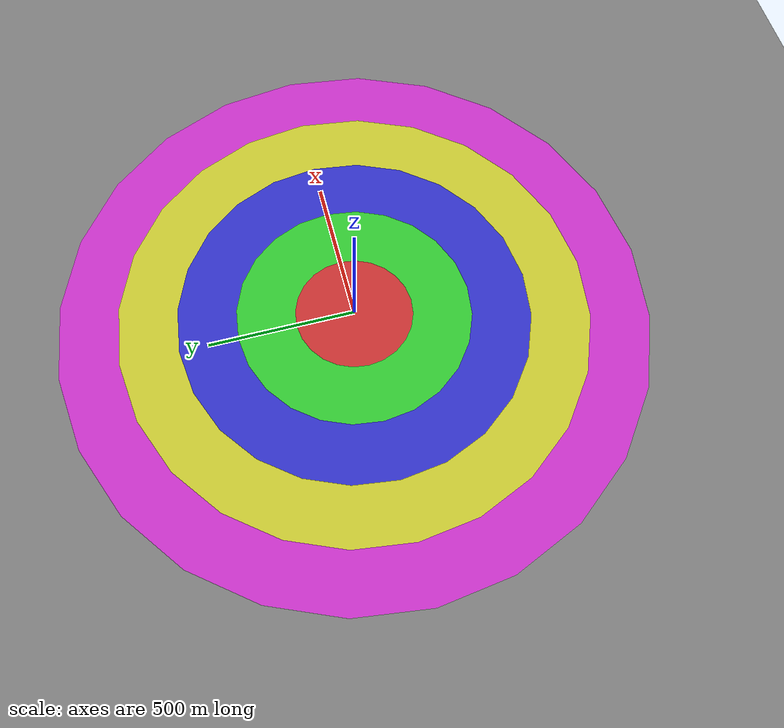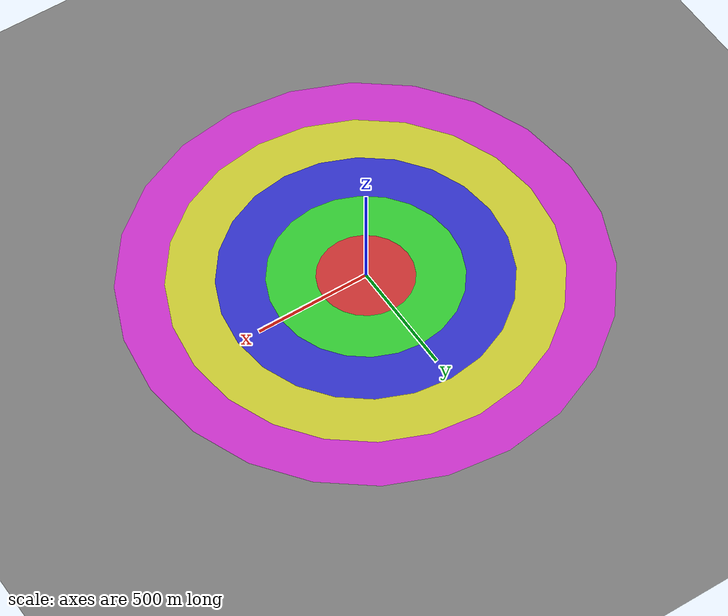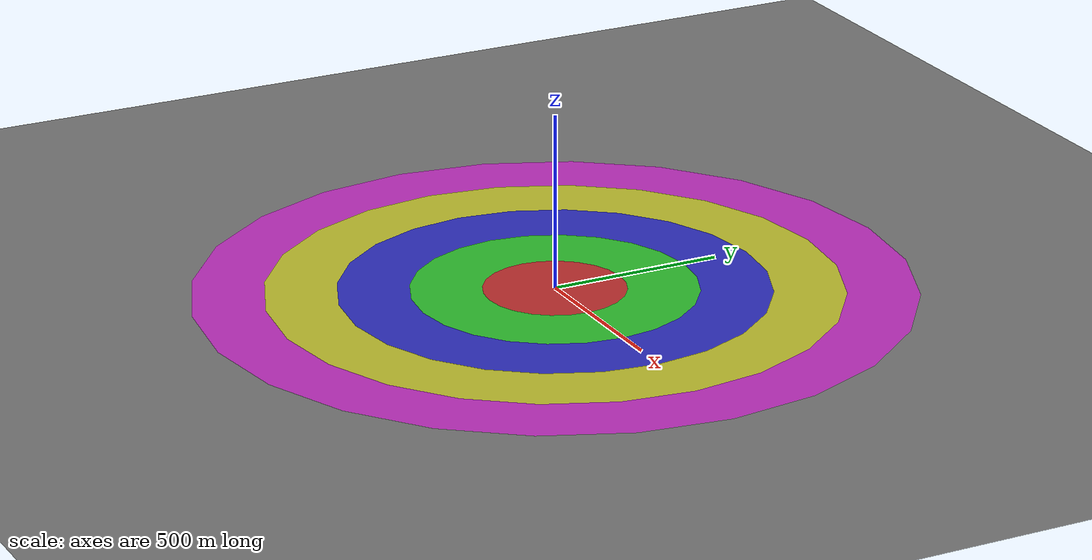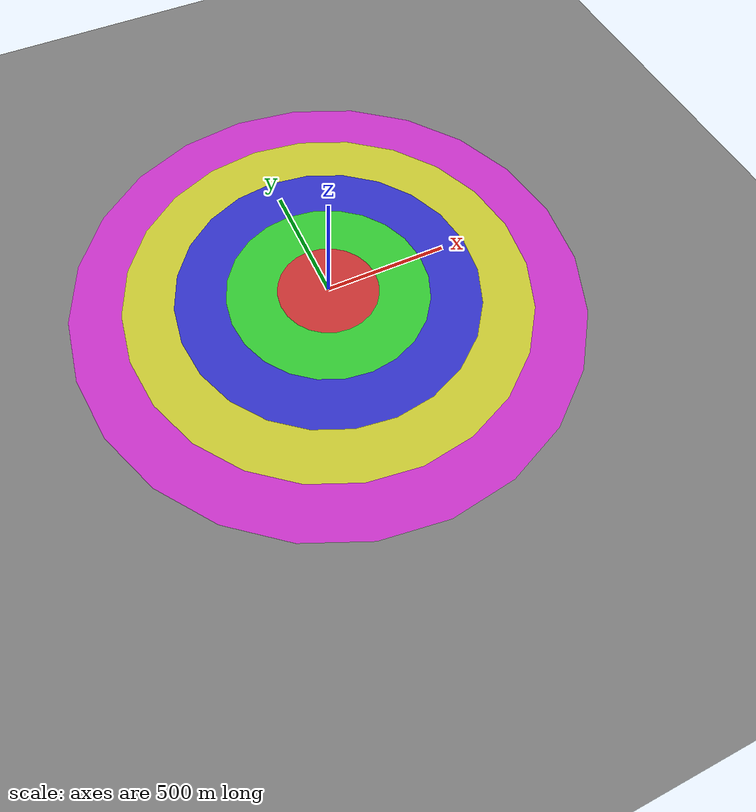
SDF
<?xml version="1.0" ?>
<sdf version="1.6">
  <world name="glider_test">
    <plugin filename="gz-sim-physics-system" name="gz::sim::systems::Physics">
    </plugin>
    <plugin filename="gz-sim-user-commands-system" name="gz::sim::systems::UserCommands">
    </plugin>
    <plugin filename="gz-sim-scene-broadcaster-system" name="gz::sim::systems::SceneBroadcaster">
    </plugin>

    <scene>
      <ambient>1.0 1.0 1.0</ambient>
      <background>0.8 0.8 0.8</background>
      <grid>true</grid>
      <origin_visual>true</origin_visual>
      <sky></sky>
    </scene>

    <physics name="1ms" type="ignored">
      <max_step_size>0.001</max_step_size>
      <real_time_factor>1.0</real_time_factor>
    </physics>

    <light type="directional" name="sun">
      <cast_shadows>true</cast_shadows>
      <pose>0 0 10 0 0 0</pose>
      <diffuse>0.8 0.8 0.8 1</diffuse>
      <specular>0.2 0.2 0.2 1</specular>
      <attenuation>
        <range>1000</range>
        <constant>0.9</constant>
        <linear>0.01</linear>
        <quadratic>0.001</quadratic>
      </attenuation>
      <direction>-0.5 0.1 -0.9</direction>
    </light>

    <model name="ground_plane">
      <static>true</static>
      <link name="link">
        <collision name="collision">
          <geometry>
            <plane>
              <normal>0 0 1</normal>
              <size>1000 1000</size>
            </plane>
          </geometry>
          <surface>
            <friction>
              <ode>
                <mu>100</mu>
                <mu2>50</mu2>
              </ode>
            </friction>
          </surface>
        </collision>
        <visual name="visual">
          <geometry>
            <plane>
              <normal>0 0 1</normal>
              <size>1000 1000</size>
            </plane>
          </geometry>
          <material>
            <ambient>0.5 0.5 0.5 1</ambient>
            <diffuse>0.5 0.5 0.5 1</diffuse>
            <specular>0.1 0.1 0.1 1</specular>
          </material>
        </visual>
      </link>
    </model>

    <model name="distance_rings">
      <static>true</static>
      <link name="ring_20">
        <visual name="visual">
          <pose>0 0 0.06 0 0 0</pose>
          <geometry>
            <cylinder>
              <radius>200</radius>
              <length>0.001</length>
            </cylinder>
          </geometry>
          <material>
            <ambient>0.8 0.2 0.2 1</ambient>
            <diffuse>0.8 0.2 0.2 1</diffuse>
            <emissive>0.09 0 0 1</emissive>
          </material>
        </visual>
      </link>
      <link name="ring_40">
        <visual name="visual">
          <pose>0 0 0.05 0 0 0</pose>
          <geometry>
            <cylinder>
              <radius>400</radius>
              <length>0.001</length>
            </cylinder>
          </geometry>
          <material>
            <ambient>0.2 0.8 0.2 1</ambient>
            <diffuse>0.2 0.8 0.2 1</diffuse>
            <emissive>0 0.3 0 1</emissive>
          </material>
        </visual>
      </link>
      <link name="ring_60">
        <visual name="visual">
          <pose>0 0 0.04 0 0 0</pose>
          <geometry>
            <cylinder>
              <radius>600</radius>
              <length>0.001</length>
            </cylinder>
          </geometry>
          <material>
            <ambient>0.2 0.2 0.8 1</ambient>
            <diffuse>0.2 0.2 0.8 1</diffuse>
            <emissive>0 0 0.3 1</emissive>
          </material>
        </visual>
      </link>
      <link name="ring_80">
        <visual name="visual">
          <pose>0 0 0.03 0 0 0</pose>
          <geometry>
            <cylinder>
              <radius>800</radius>
              <length>0.001</length>
            </cylinder>
          </geometry>
          <material>
            <ambient>0.8 0.8 0.2 1</ambient>
            <diffuse>0.8 0.8 0.2 1</diffuse>
            <emissive>0.3 0.3 0 1</emissive>
          </material>
        </visual>
      </link>
      <link name="ring_100">
        <visual name="visual">
          <pose>0 0 0.02 0 0 0</pose>
          <geometry>
            <cylinder>
              <radius>1000</radius>
              <length>0.001</length>
            </cylinder>
          </geometry>
          <material>
            <ambient>0.8 0.2 0.8 1</ambient>
            <diffuse>0.8 0.2 0.8 1</diffuse>
            <emissive>0.3 0 0.3 1</emissive>
          </material>
        </visual>
      </link>
    </model>

    <include>
      <uri>file:///home/ubuntu/ws/src/sim/models/paper_glider</uri>
    </include>

    <gravity>0 0 -9.8</gravity>

    <atmosphere type="adiabatic">
      <pressure>101325</pressure>
      <temperature>288.15</temperature>
    </atmosphere>
  </world>
</sdf>

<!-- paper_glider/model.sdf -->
<sdf version="1.6">
  <model name="paper_glider">
    <pose>0 0 50 0 0.15 0</pose> <!-- Starting position with slight downward pitch (0.15 rad) -->

    <link name="fuselage">
      <pose>0 0 0 0 0 0</pose>
      <inertial>
        <mass>0.05</mass> <!-- Much lighter, like paper -->
        <inertia>
          <ixx>0.001</ixx>
          <ixy>0</ixy>
          <ixz>0</ixz>
          <iyy>0.005</iyy>
          <iyz>0</iyz>
          <izz>0.005</izz>
        </inertia>
      </inertial>

      <collision name="collision">
        <geometry>
          <box>
            <size>0.3 0.05 0.01</size> <!-- Thinner like folded paper -->
          </box>
        </geometry>
      </collision>

      <visual name="visual">
        <geometry>
          <box>
            <size>0.3 0.05 0.01</size>
          </box>
        </geometry>
        <material>
          <ambient>0.9 0.9 0.9 1</ambient>
          <diffuse>0.9 0.9 0.9 1</diffuse>
          <specular>0.1 0.1 0.1 1</specular>
        </material>
      </visual>
    </link>

    <link name="left_wing">
      <pose>0 0.2 0 0 0 0</pose> <!-- Slight dihedral angle (0.1 rad) -->
      <inertial>
        <mass>0.02</mass> <!-- Very light -->
        <inertia>
          <ixx>0.0001</ixx>
          <ixy>0</ixy>
          <ixz>0</ixz>
          <iyy>0.001</iyy>
          <iyz>0</iyz>
          <izz>0.001</izz>
        </inertia>
      </inertial>

      <collision name="collision">
        <geometry>
          <box>
            <size>0.3 0.3 0.005</size> <!-- Thin like paper -->
          </box>
        </geometry>
      </collision>

      <visual name="visual">
        <geometry>
          <box>
            <size>0.3 0.3 0.005</size>
          </box>
        </geometry>
        <material>
          <ambient>0.9 0.9 0.9 1</ambient>
          <diffuse>0.9 0.9 0.9 1</diffuse>
          <specular>0.1 0.1 0.1 1</specular>
        </material>
      </visual>
    </link>

    <link name="right_wing">
      <pose>0 -0.2 0 0 0 0</pose> <!-- Slight dihedral angle (0.1 rad) -->
      <inertial>
        <mass>0.02</mass> <!-- Very light -->
        <inertia>
          <ixx>0.0001</ixx>
          <ixy>0</ixy>
          <ixz>0</ixz>
          <iyy>0.001</iyy>
          <iyz>0</iyz>
          <izz>0.001</izz>
        </inertia>
      </inertial>

      <collision name="collision">
        <geometry>
          <box>
            <size>0.3 0.3 0.005</size> <!-- Thin like paper -->
          </box>
        </geometry>
      </collision>

      <visual name="visual">
        <geometry>
          <box>
            <size>0.3 0.3 0.005</size>
          </box>
        </geometry>
        <material>
          <ambient>0.9 0.9 0.9 1</ambient>
          <diffuse>0.9 0.9 0.9 1</diffuse>
          <specular>0.1 0.1 0.1 1</specular>
        </material>
      </visual>
    </link>

    <!-- Fixed joints connecting wings to fuselage -->
    <joint name="left_wing_joint" type="fixed">
      <parent>fuselage</parent>
      <child>left_wing</child>
    </joint>

    <joint name="right_wing_joint" type="fixed">
      <parent>fuselage</parent>
      <child>right_wing</child>
    </joint>

    <!-- LiftDrag Plugin for Left Wing - Using Gazebo Ignition plugin format -->
    <plugin
      filename="gz-sim-lift-drag-system"
      name="gz::sim::systems::LiftDrag">
      <link_name>left_wing</link_name>
      <air_density>1.2041</air_density>
      <area>0.09</area>
      <forward>1 0 0</forward>
      <upward>0 0 1</upward>
      <cp>0 0 0</cp>
      <!-- Lift and drag coefficients for paper airfoil -->
      <a0>0.0</a0>
      <cla>3.0</cla> <!-- Slightly less lift than before -->
      <cda>0.08</cda> <!-- Slightly less drag -->
      <cma>0.0</cma>
      <alpha_stall>0.3</alpha_stall>
      <cla_stall>-0.2</cla_stall>
      <cda_stall>1.5</cda_stall>
      <cma_stall>0.0</cma_stall>
    </plugin>

    <!-- LiftDrag Plugin for Right Wing - Using Gazebo Ignition plugin format -->
    <plugin
      filename="gz-sim-lift-drag-system"
      name="gz::sim::systems::LiftDrag">
      <link_name>right_wing</link_name>
      <air_density>1.2041</air_density>
      <area>0.09</area>
      <forward>1 0 0</forward>
      <upward>0 0 1</upward>
      <cp>0 0 0</cp>
      <!-- Same lift and drag coefficients as left wing -->
      <a0>0.0</a0>
      <cla>3.0</cla>
      <cda>0.08</cda>
      <cma>0.0</cma>
      <alpha_stall>0.3</alpha_stall>
      <cla_stall>-0.2</cla_stall>
      <cda_stall>1.5</cda_stall>
      <cma_stall>0.0</cma_stall>
    </plugin>
  </model>
</sdf>
